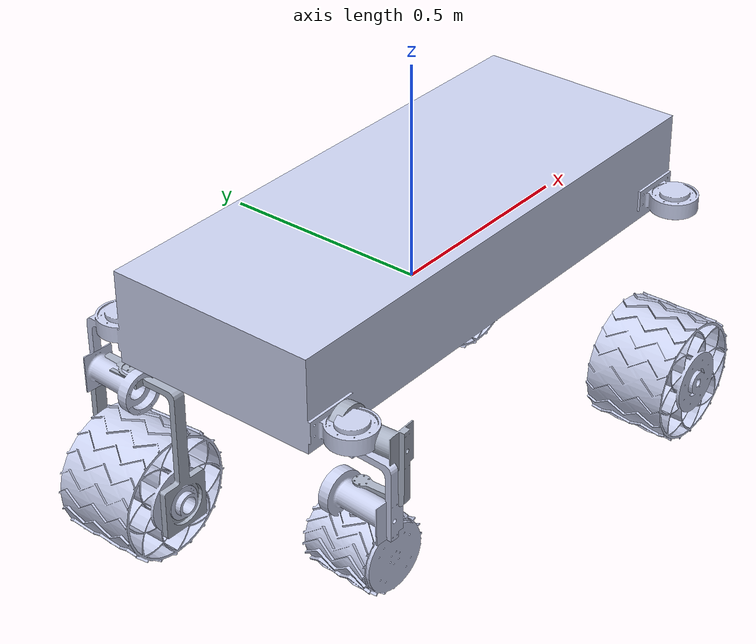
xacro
<?xml version="1.0" ?>
<!-- |    This document was autogenerated by xacro from rogue_des.urdf                 | -->
<!-- |    EDITING THIS FILE BY HAND IS NOT RECOMMENDED                                 | -->
<robot name="rogue">
  <link name="base_link">
    <origin rpy="0 0 0" xyz="0 0 0"/>
  </link>
  <!-- joint base chassis -->
  <joint name="base_joint" type="fixed">
    <parent link="base_link"/>
    <child link="chassis_link"/>
    <origin xyz="0 -0.235 -0.11"/>
  </joint>
  <!-- chassis link -->
  <link name="chassis_link">
    <inertial>
      <origin rpy="0 0 0" xyz="-0.00246940894159626 0.1058972543147 5.46494556407368E-17"/>
      <mass value="136.620754096564"/>
      <inertia ixx="0.07413" ixy="-0.00011285" ixz="-1.4435E-06" iyy="0.14749" iyz="1.7539E-08" izz="0.11937"/>
    </inertial>
    <visual>
    <origin rpy="0 0 0" xyz="0 0.235 0.11"/>
      <geometry>
        <mesh filename="file:///$(find rogue)/description/meshes/base_link.stl"/>
      </geometry>
      <material name="">
        <color rgba="0.79216 0.81961 0.93333 1"/>
      </material>
    </visual>
    <collision>
      <origin rpy="0 0 0" xyz="0 0.235 0.11"/>
      <geometry>
        <mesh filename="file:///$(find rogue)/description/meshes/base_link.stl"/>
      </geometry>
    </collision>
  </link>

  <gazebo reference="chassis_link">
      <material>Gazebo/Gray</material>
  </gazebo>

  <link name="Steering_Front_Left_Link">
    <inertial>
      <origin rpy="0 0 0" xyz="-0.00974656428371329 0.171466468601951 3.33066907387547E-15"/>
      <mass value="1.85682341940371"/>
      <inertia ixx="0.0307102115747056" ixy="0.00225357611286934" ixz="1.56419202677199E-14" iyy="0.0217734903548105" iyz="-1.09535590233495E-15" izz="0.0500272192704002"/>
    </inertial>
    <visual>
      <origin rpy="0 0 0" xyz="0 0 0"/>
      <geometry>
        <mesh filename="file:///$(find rogue)/description/meshes/Steering_Front_Left_Link.stl"/>
      </geometry>
      <material name="">
        <color rgba="0.666666666666667 0.698039215686274 0.768627450980392 1"/>
      </material>
    </visual>
    <collision>
      <origin rpy="0 0 0" xyz="0 0 0"/>
      <geometry>
        <mesh filename="file:///$(find rogue)/description/meshes/Steering_Front_Left_Link.stl"/>
      </geometry>
    </collision>
  </link>

  <gazebo reference="Steering_Front_Left_Link">
      <material>Gazebo/Grey</material>
  </gazebo>

  <joint name="Steering_Front_Left" type="continuous">
    <origin rpy="-1.5789896816345 0 -1.5707963267949" xyz="-0.539929731609329 -0.307999999999972 -0.0838046685206459"/>
    <parent link="base_link"/>
    <child link="Steering_Front_Left_Link"/>
    <axis xyz="0 1 0"/>
  </joint>

  <link name="Driving_Front_Left_Link">
    <inertial>
      <origin rpy="0 0 0" xyz="0.000635564712824666 -0.152689840468291 -0.00010385666276358"/>
      <mass value="3.92591214810011"/>
      <inertia ixx="0.040527651338497" ixy="8.45389473885711E-07" ixz="-3.83041768788121E-09" iyy="0.0313134736150526" iyz="8.54177538313404E-06" izz="0.0312863477526415"/>
    </inertial>
    <visual>
      <origin rpy="0 0 0" xyz="0 0.148 0"/>
      <geometry>
        <mesh filename="file:///$(find rogue)/description/meshes/Driving_Front_Left_Link.stl"/>
      </geometry>
      <material name="">
        <color rgba="0.792156862745098 0.819607843137255 0.933333333333333 1"/>
      </material>
    </visual>
    <collision>
      <origin rpy="0 0 0" xyz="0 0.148 0"/>
      <geometry>
        <mesh filename="file:///$(find rogue)/description/meshes/Driving_Front_Left_Link.stl"/>
      </geometry>
    </collision>
  </link>

  <gazebo reference="Driving_Front_Left_Link">
      <material>Gazebo/Red</material>
  </gazebo>

  <joint name="Driving_Front_Left" type="continuous">
    <origin rpy="0 0 3.14159265358979" xyz="0 ${0.14261211817947+0.148} 0"/>
    <parent link="Steering_Front_Left_Link"/>
    <child link="Driving_Front_Left_Link"/>
    <axis xyz="1 0 0"/>
  </joint>

  <link name="Steering_Front_Right_Link">
    <inertial>
      <origin rpy="0 0 0" xyz="-0.00974656428371296 -0.171380762932291 -8.54871728961371E-15"/>
      <mass value="1.85682341940371"/>
      <inertia ixx="0.0307102115747056" ixy="-0.00225357611286932" ixz="-1.57031471972793E-14" iyy="0.0217734903548105" iyz="-1.99752053006014E-15" izz="0.0500272192704002"/>
    </inertial>
    <visual>
      <origin rpy="0 0 0" xyz="0 0 0"/>
      <geometry>
        <mesh filename="file:///$(find rogue)/description/meshes/Steering_Front_Right_Link.stl"/>
      </geometry>
      <material name="">
        <color rgba="0.666666666666667 0.698039215686274 0.768627450980392 1"/>
      </material>
    </visual>
    <collision>
      <origin rpy="0 0 0" xyz="0 0 0"/>
      <geometry>
        <mesh filename="file:///$(find rogue)/description/meshes/Steering_Front_Right_Link.stl"/>
      </geometry>
    </collision>
  </link>

  <gazebo reference="Steering_Front_Right_Link">
      <material>Gazebo/Grey</material>
  </gazebo>

  <joint name="Steering_Front_Right" type="continuous">
    <origin rpy="1.57827537993681 0 1.5707963267949" xyz="-0.539856087012609 0.308000000000008 -0.0842760180023664"/>
    <parent link="base_link"/>
    <child link="Steering_Front_Right_Link"/>
    <axis xyz="0 1 0"/>
  </joint>

  <link name="Driving_Front_Right_Link">
    <inertial>
      <origin rpy="0 0 0" xyz="0.000635564712824388 0.152474662096144 0.000103856662758472"/>
      <mass value="3.92591214810005"/>
      <inertia ixx="0.0405276513384967" ixy="-8.45389473903581E-07" ixz="3.83041770842588E-09" iyy="0.0313134736150523" iyz="8.54177538309055E-06" izz="0.0312863477526412"/>
    </inertial>
    <visual>
      <origin rpy="0 0 0" xyz="0 -0.148 0"/>
      <geometry>
        <mesh filename="file:///$(find rogue)/description/meshes/Driving_Front_Right_Link.stl"/>
      </geometry>
      <material name="">
        <color rgba="0.792156862745098 0.819607843137255 0.933333333333333 1"/>
      </material>
    </visual>
    <collision>
      <origin rpy="0 0 0" xyz="0 -0.148 0"/>
      <geometry>
        <mesh filename="file:///$(find rogue)/description/meshes/Driving_Front_Right_Link.stl"/>
      </geometry>
    </collision>
  </link>

  <gazebo reference="Driving_Front_Right_Link">
      <material>Gazebo/Red</material>
  </gazebo>

  <joint name="Driving_Front_Right" type="continuous">
    <origin rpy="0 0 3.14159265358979" xyz="0 ${-0.142741590881956-0.148} 0"/>
    <parent link="Steering_Front_Right_Link"/>
    <child link="Driving_Front_Right_Link"/>
    <axis xyz="1 0 0"/>
  </joint>

  <link name="Driving_Left_Link">
    <inertial>
      <origin rpy="0 0 0" xyz="-0.134864435287178 0.000687652998535182 -0.000103856662875601"/>
      <mass value="3.9259121481001"/>
      <inertia ixx="0.0405276513384971" ixy="8.45389473657967E-07" ixz="-3.83041783364525E-09" iyy="0.0313134736150526" iyz="8.54177538309626E-06" izz="0.0312863477526416"/>
    </inertial>
    <visual>
      <origin rpy="0 0 0" xyz="0 0 0"/>
      <geometry>
        <mesh filename="file:///$(find rogue)/description/meshes/Driving_Left_Link.stl"/>
      </geometry>
      <material name="">
        <color rgba="0.792156862745098 0.819607843137255 0.933333333333333 1"/>
      </material>
    </visual>
    <collision>
      <origin rpy="0 0 0" xyz="0 0 0"/>
      <geometry>
        <mesh filename="file:///$(find rogue)/description/meshes/Driving_Left_Link.stl"/>
      </geometry>
    </collision>
  </link>

  <gazebo reference="Driving_Left_Link">
      <material>Gazebo/Red</material>
  </gazebo>

  <joint name="Driving_Left" type="continuous">
    <origin rpy="1.5707963267949 0 1.5707963267949" xyz="0.535731179493507 -0.172500000000432 -0.38861768424532"/>
    <parent link="base_link"/>
    <child link="Driving_Left_Link"/>
    <axis xyz="1 0 0"/>
  </joint>

  <link name="Driving_Right_Link">
    <inertial>
      <origin rpy="0 0 0" xyz="-0.134864435287174 -0.000687652998533683 0.00010385666287549"/>
      <mass value="3.92591214810012"/>
      <inertia ixx="0.0405276513384973" ixy="-8.45389473982144E-07" ixz="3.83041772531102E-09" iyy="0.0313134736150526" iyz="8.54177538295617E-06" izz="0.0312863477526417"/>
    </inertial>
    <visual>
      <origin rpy="0 0 0" xyz="0 0 0"/>
      <geometry>
        <mesh filename="file:///$(find rogue)/description/meshes/Driving_Right_Link.stl"/>
      </geometry>
      <material name="">
        <color rgba="0.792156862745098 0.819607843137255 0.933333333333333 1"/>
      </material>
    </visual>
    <collision>
      <origin rpy="0 0 0" xyz="0 0 0"/>
      <geometry>
        <mesh filename="file:///$(find rogue)/description/meshes/Driving_Right_Link.stl"/>
      </geometry>
    </collision>
  </link>

  <gazebo reference="Driving_Right_Link">
      <material>Gazebo/Red</material>
  </gazebo>

  <joint name="Driving_Right" type="continuous">
    <origin rpy="-1.5707963267949 0 -1.5707963267949" xyz="0.536022919102346 0.17249999999957 -0.388234906342967"/>
    <parent link="base_link"/>
    <child link="Driving_Right_Link"/>
    <axis xyz="1 0 0"/>
  </joint>
</robot>
